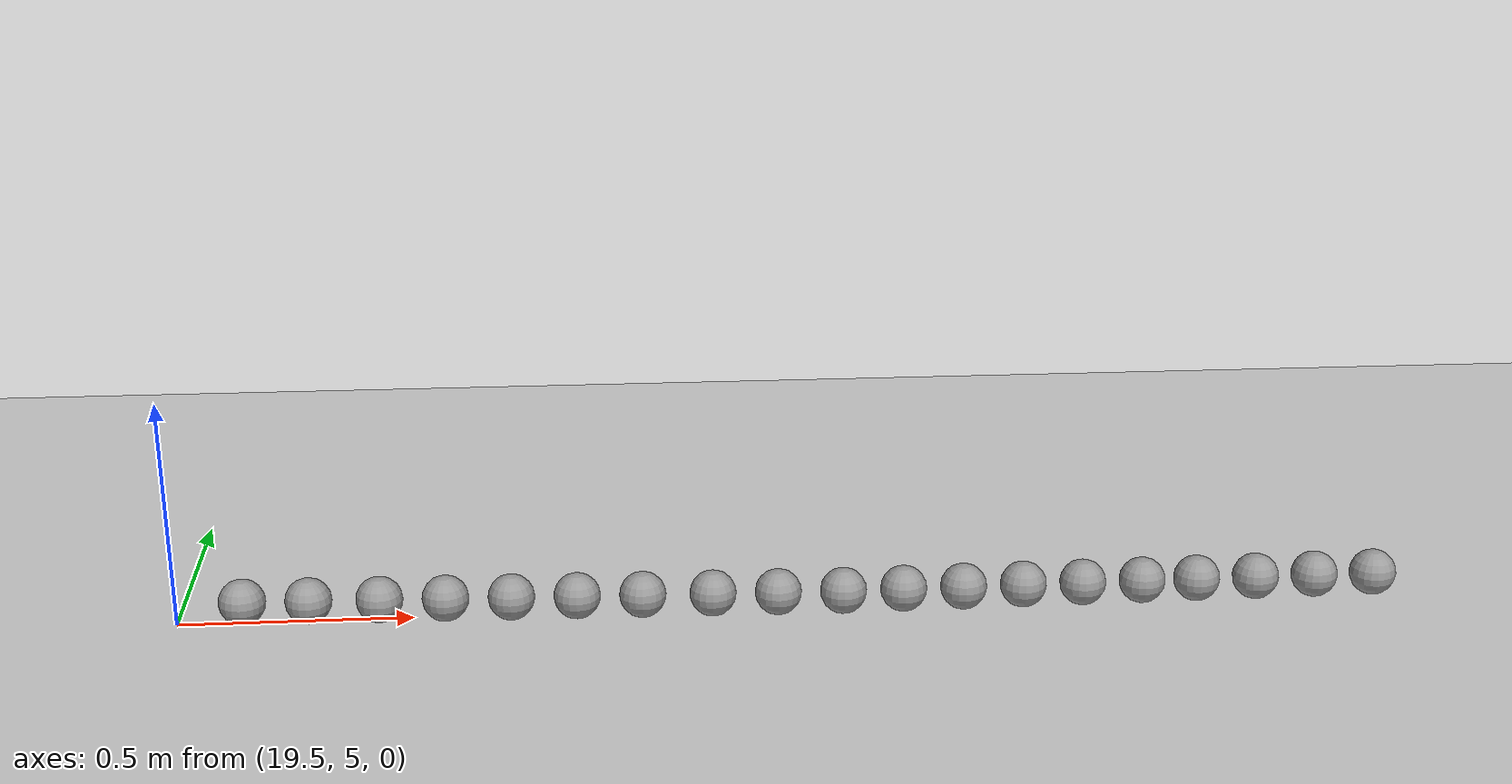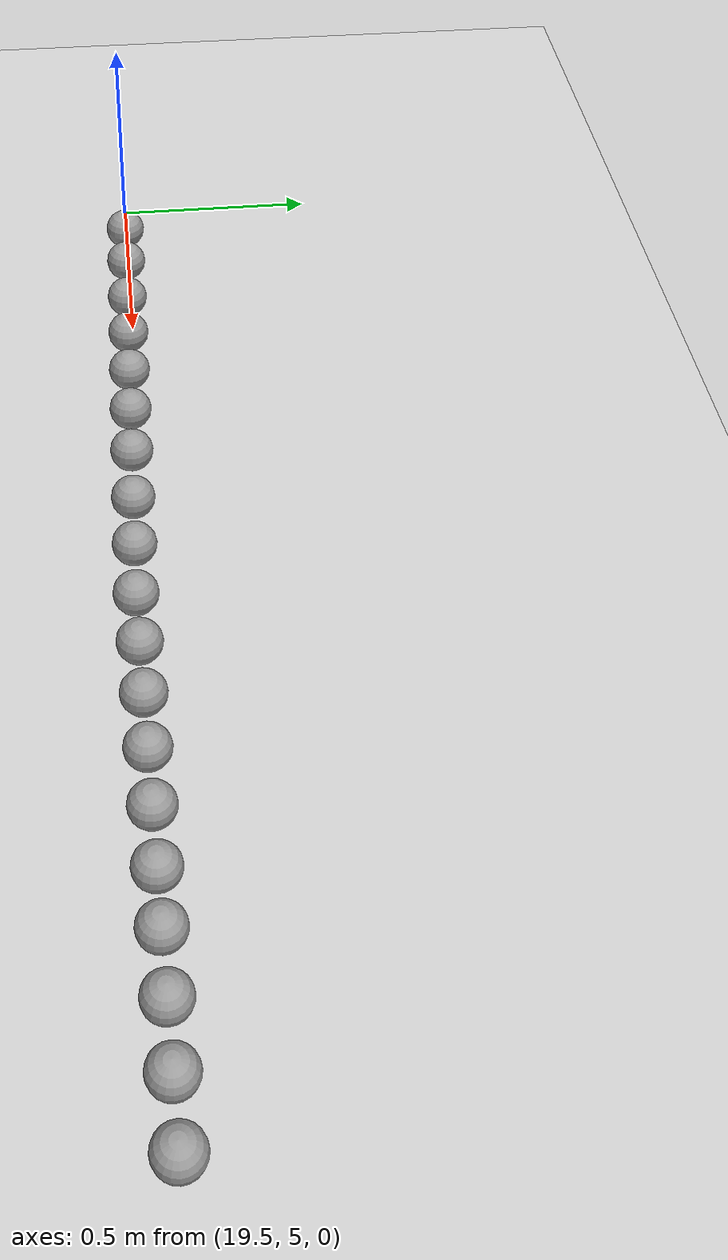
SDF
<sdf version="1.6">
 <world name="default">
  <model name="ground_plane">
   <static>1</static>
   <link name="link">
    <collision name="collision">
     <geometry><plane><normal>0 0 1</normal><size>100 100</size></plane></geometry>
     <surface><friction><ode><mu>100</mu><mu2>50</mu2></ode></friction></surface>
    </collision>
    <visual name="visual">
     <cast_shadows>0</cast_shadows>
     <geometry><plane><normal>0 0 1</normal><size>100 100</size></plane></geometry>
     <material>
      <script><uri>file://media/materials/scripts/gazebo.material</uri><name>Gazebo/Grey</name></script>
     </material>
    </visual>
   </link>
  </model>
  <model name="unit_sphere_0_341">
   <pose>22.080000 4.988000 0.050000 0 -0 0</pose>
   <link name="link">
    <inertial>
     <mass>1</mass>
     <inertia><ixx>0.1</ixx><ixy>0</ixy><ixz>0</ixz><iyy>0.1</iyy><iyz>0</iyz><izz>0.1</izz></inertia>
    </inertial>
    <collision name="collision"><geometry><sphere><radius>0.050000</radius></sphere></geometry></collision>
    <visual name="visual">
     <geometry><sphere><radius>0.050000</radius></sphere></geometry>
     <material>
      <script><name>Gazebo/Grey</name><uri>file://media/materials/scripts/gazebo.material</uri></script>
     </material>
    </visual>
   </link>
  </model>
  <model name="unit_sphere_0_342">
   <pose>21.950000 4.986000 0.050000 0 -0 0</pose>
   <link name="link">
    <inertial>
     <mass>1</mass>
     <inertia><ixx>0.1</ixx><ixy>0</ixy><ixz>0</ixz><iyy>0.1</iyy><iyz>0</iyz><izz>0.1</izz></inertia>
    </inertial>
    <collision name="collision"><geometry><sphere><radius>0.050000</radius></sphere></geometry></collision>
    <visual name="visual">
     <geometry><sphere><radius>0.050000</radius></sphere></geometry>
     <material>
      <script><name>Gazebo/Grey</name><uri>file://media/materials/scripts/gazebo.material</uri></script>
     </material>
    </visual>
   </link>
  </model>
  <model name="unit_sphere_0_343">
   <pose>21.820000 4.984000 0.050000 0 -0 0</pose>
   <link name="link">
    <inertial>
     <mass>1</mass>
     <inertia><ixx>0.1</ixx><ixy>0</ixy><ixz>0</ixz><iyy>0.1</iyy><iyz>0</iyz><izz>0.1</izz></inertia>
    </inertial>
    <collision name="collision"><geometry><sphere><radius>0.050000</radius></sphere></geometry></collision>
    <visual name="visual">
     <geometry><sphere><radius>0.050000</radius></sphere></geometry>
     <material>
      <script><name>Gazebo/Grey</name><uri>file://media/materials/scripts/gazebo.material</uri></script>
     </material>
    </visual>
   </link>
  </model>
  <model name="unit_sphere_0_344">
   <pose>21.690000 4.982000 0.050000 0 -0 0</pose>
   <link name="link">
    <inertial>
     <mass>1</mass>
     <inertia><ixx>0.1</ixx><ixy>0</ixy><ixz>0</ixz><iyy>0.1</iyy><iyz>0</iyz><izz>0.1</izz></inertia>
    </inertial>
    <collision name="collision"><geometry><sphere><radius>0.050000</radius></sphere></geometry></collision>
    <visual name="visual">
     <geometry><sphere><radius>0.050000</radius></sphere></geometry>
     <material>
      <script><name>Gazebo/Grey</name><uri>file://media/materials/scripts/gazebo.material</uri></script>
     </material>
    </visual>
   </link>
  </model>
  <model name="unit_sphere_0_345">
   <pose>21.570000 4.980000 0.050000 0 -0 0</pose>
   <link name="link">
    <inertial>
     <mass>1</mass>
     <inertia><ixx>0.1</ixx><ixy>0</ixy><ixz>0</ixz><iyy>0.1</iyy><iyz>0</iyz><izz>0.1</izz></inertia>
    </inertial>
    <collision name="collision"><geometry><sphere><radius>0.050000</radius></sphere></geometry></collision>
    <visual name="visual">
     <geometry><sphere><radius>0.050000</radius></sphere></geometry>
     <material>
      <script><name>Gazebo/Grey</name><uri>file://media/materials/scripts/gazebo.material</uri></script>
     </material>
    </visual>
   </link>
  </model>
  <model name="unit_sphere_0_346">
   <pose>21.440000 4.978000 0.050000 0 -0 0</pose>
   <link name="link">
    <inertial>
     <mass>1</mass>
     <inertia><ixx>0.1</ixx><ixy>0</ixy><ixz>0</ixz><iyy>0.1</iyy><iyz>0</iyz><izz>0.1</izz></inertia>
    </inertial>
    <collision name="collision"><geometry><sphere><radius>0.050000</radius></sphere></geometry></collision>
    <visual name="visual">
     <geometry><sphere><radius>0.050000</radius></sphere></geometry>
     <material>
      <script><name>Gazebo/Grey</name><uri>file://media/materials/scripts/gazebo.material</uri></script>
     </material>
    </visual>
   </link>
  </model>
  <model name="unit_sphere_0_347">
   <pose>21.310000 4.976000 0.050000 0 -0 0</pose>
   <link name="link">
    <inertial>
     <mass>1</mass>
     <inertia><ixx>0.1</ixx><ixy>0</ixy><ixz>0</ixz><iyy>0.1</iyy><iyz>0</iyz><izz>0.1</izz></inertia>
    </inertial>
    <collision name="collision"><geometry><sphere><radius>0.050000</radius></sphere></geometry></collision>
    <visual name="visual">
     <geometry><sphere><radius>0.050000</radius></sphere></geometry>
     <material>
      <script><name>Gazebo/Grey</name><uri>file://media/materials/scripts/gazebo.material</uri></script>
     </material>
    </visual>
   </link>
  </model>
  <model name="unit_sphere_0_348">
   <pose>21.180000 4.974000 0.050000 0 -0 0</pose>
   <link name="link">
    <inertial>
     <mass>1</mass>
     <inertia><ixx>0.1</ixx><ixy>0</ixy><ixz>0</ixz><iyy>0.1</iyy><iyz>0</iyz><izz>0.1</izz></inertia>
    </inertial>
    <collision name="collision"><geometry><sphere><radius>0.050000</radius></sphere></geometry></collision>
    <visual name="visual">
     <geometry><sphere><radius>0.050000</radius></sphere></geometry>
     <material>
      <script><name>Gazebo/Grey</name><uri>file://media/materials/scripts/gazebo.material</uri></script>
     </material>
    </visual>
   </link>
  </model>
  <model name="unit_sphere_0_349">
   <pose>21.050000 4.972000 0.050000 0 -0 0</pose>
   <link name="link">
    <inertial>
     <mass>1</mass>
     <inertia><ixx>0.1</ixx><ixy>0</ixy><ixz>0</ixz><iyy>0.1</iyy><iyz>0</iyz><izz>0.1</izz></inertia>
    </inertial>
    <collision name="collision"><geometry><sphere><radius>0.050000</radius></sphere></geometry></collision>
    <visual name="visual">
     <geometry><sphere><radius>0.050000</radius></sphere></geometry>
     <material>
      <script><name>Gazebo/Grey</name><uri>file://media/materials/scripts/gazebo.material</uri></script>
     </material>
    </visual>
   </link>
  </model>
  <model name="unit_sphere_0_350">
   <pose>20.920000 4.970000 0.050000 0 -0 0</pose>
   <link name="link">
    <inertial>
     <mass>1</mass>
     <inertia><ixx>0.1</ixx><ixy>0</ixy><ixz>0</ixz><iyy>0.1</iyy><iyz>0</iyz><izz>0.1</izz></inertia>
    </inertial>
    <collision name="collision"><geometry><sphere><radius>0.050000</radius></sphere></geometry></collision>
    <visual name="visual">
     <geometry><sphere><radius>0.050000</radius></sphere></geometry>
     <material>
      <script><name>Gazebo/Grey</name><uri>file://media/materials/scripts/gazebo.material</uri></script>
     </material>
    </visual>
   </link>
  </model>
  <model name="unit_sphere_0_351">
   <pose>20.780000 4.973000 0.050000 0 -0 0</pose>
   <link name="link">
    <inertial>
     <mass>1</mass>
     <inertia><ixx>0.1</ixx><ixy>0</ixy><ixz>0</ixz><iyy>0.1</iyy><iyz>0</iyz><izz>0.1</izz></inertia>
    </inertial>
    <collision name="collision"><geometry><sphere><radius>0.050000</radius></sphere></geometry></collision>
    <visual name="visual">
     <geometry><sphere><radius>0.050000</radius></sphere></geometry>
     <material>
      <script><name>Gazebo/Grey</name><uri>file://media/materials/scripts/gazebo.material</uri></script>
     </material>
    </visual>
   </link>
  </model>
  <model name="unit_sphere_0_352">
   <pose>20.640000 4.976000 0.050000 0 -0 0</pose>
   <link name="link">
    <inertial>
     <mass>1</mass>
     <inertia><ixx>0.1</ixx><ixy>0</ixy><ixz>0</ixz><iyy>0.1</iyy><iyz>0</iyz><izz>0.1</izz></inertia>
    </inertial>
    <collision name="collision"><geometry><sphere><radius>0.050000</radius></sphere></geometry></collision>
    <visual name="visual">
     <geometry><sphere><radius>0.050000</radius></sphere></geometry>
     <material>
      <script><name>Gazebo/Grey</name><uri>file://media/materials/scripts/gazebo.material</uri></script>
     </material>
    </visual>
   </link>
  </model>
  <model name="unit_sphere_0_353">
   <pose>20.490000 4.979000 0.050000 0 -0 0</pose>
   <link name="link">
    <inertial>
     <mass>1</mass>
     <inertia><ixx>0.1</ixx><ixy>0</ixy><ixz>0</ixz><iyy>0.1</iyy><iyz>0</iyz><izz>0.1</izz></inertia>
    </inertial>
    <collision name="collision"><geometry><sphere><radius>0.050000</radius></sphere></geometry></collision>
    <visual name="visual">
     <geometry><sphere><radius>0.050000</radius></sphere></geometry>
     <material>
      <script><name>Gazebo/Grey</name><uri>file://media/materials/scripts/gazebo.material</uri></script>
     </material>
    </visual>
   </link>
  </model>
  <model name="unit_sphere_0_354">
   <pose>20.350000 4.982000 0.050000 0 -0 0</pose>
   <link name="link">
    <inertial>
     <mass>1</mass>
     <inertia><ixx>0.1</ixx><ixy>0</ixy><ixz>0</ixz><iyy>0.1</iyy><iyz>0</iyz><izz>0.1</izz></inertia>
    </inertial>
    <collision name="collision"><geometry><sphere><radius>0.050000</radius></sphere></geometry></collision>
    <visual name="visual">
     <geometry><sphere><radius>0.050000</radius></sphere></geometry>
     <material>
      <script><name>Gazebo/Grey</name><uri>file://media/materials/scripts/gazebo.material</uri></script>
     </material>
    </visual>
   </link>
  </model>
  <model name="unit_sphere_0_355">
   <pose>20.210000 4.985000 0.050000 0 -0 0</pose>
   <link name="link">
    <inertial>
     <mass>1</mass>
     <inertia><ixx>0.1</ixx><ixy>0</ixy><ixz>0</ixz><iyy>0.1</iyy><iyz>0</iyz><izz>0.1</izz></inertia>
    </inertial>
    <collision name="collision"><geometry><sphere><radius>0.050000</radius></sphere></geometry></collision>
    <visual name="visual">
     <geometry><sphere><radius>0.050000</radius></sphere></geometry>
     <material>
      <script><name>Gazebo/Grey</name><uri>file://media/materials/scripts/gazebo.material</uri></script>
     </material>
    </visual>
   </link>
  </model>
  <model name="unit_sphere_0_356">
   <pose>20.070000 4.988000 0.050000 0 -0 0</pose>
   <link name="link">
    <inertial>
     <mass>1</mass>
     <inertia><ixx>0.1</ixx><ixy>0</ixy><ixz>0</ixz><iyy>0.1</iyy><iyz>0</iyz><izz>0.1</izz></inertia>
    </inertial>
    <collision name="collision"><geometry><sphere><radius>0.050000</radius></sphere></geometry></collision>
    <visual name="visual">
     <geometry><sphere><radius>0.050000</radius></sphere></geometry>
     <material>
      <script><name>Gazebo/Grey</name><uri>file://media/materials/scripts/gazebo.material</uri></script>
     </material>
    </visual>
   </link>
  </model>
  <model name="unit_sphere_0_357">
   <pose>19.930000 4.991000 0.050000 0 -0 0</pose>
   <link name="link">
    <inertial>
     <mass>1</mass>
     <inertia><ixx>0.1</ixx><ixy>0</ixy><ixz>0</ixz><iyy>0.1</iyy><iyz>0</iyz><izz>0.1</izz></inertia>
    </inertial>
    <collision name="collision"><geometry><sphere><radius>0.050000</radius></sphere></geometry></collision>
    <visual name="visual">
     <geometry><sphere><radius>0.050000</radius></sphere></geometry>
     <material>
      <script><name>Gazebo/Grey</name><uri>file://media/materials/scripts/gazebo.material</uri></script>
     </material>
    </visual>
   </link>
  </model>
  <model name="unit_sphere_0_358">
   <pose>19.780000 4.994000 0.050000 0 -0 0</pose>
   <link name="link">
    <inertial>
     <mass>1</mass>
     <inertia><ixx>0.1</ixx><ixy>0</ixy><ixz>0</ixz><iyy>0.1</iyy><iyz>0</iyz><izz>0.1</izz></inertia>
    </inertial>
    <collision name="collision"><geometry><sphere><radius>0.050000</radius></sphere></geometry></collision>
    <visual name="visual">
     <geometry><sphere><radius>0.050000</radius></sphere></geometry>
     <material>
      <script><name>Gazebo/Grey</name><uri>file://media/materials/scripts/gazebo.material</uri></script>
     </material>
    </visual>
   </link>
  </model>
  <model name="unit_sphere_0_359">
   <pose>19.640000 4.997000 0.050000 0 -0 0</pose>
   <link name="link">
    <inertial>
     <mass>1</mass>
     <inertia><ixx>0.1</ixx><ixy>0</ixy><ixz>0</ixz><iyy>0.1</iyy><iyz>0</iyz><izz>0.1</izz></inertia>
    </inertial>
    <collision name="collision"><geometry><sphere><radius>0.050000</radius></sphere></geometry></collision>
    <visual name="visual">
     <geometry><sphere><radius>0.050000</radius></sphere></geometry>
     <material>
      <script><name>Gazebo/Grey</name><uri>file://media/materials/scripts/gazebo.material</uri></script>
     </material>
    </visual>
   </link>
  </model>
 </world>
</sdf>
